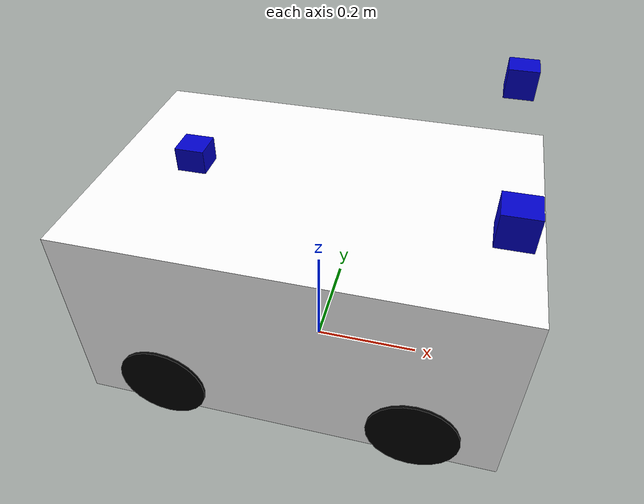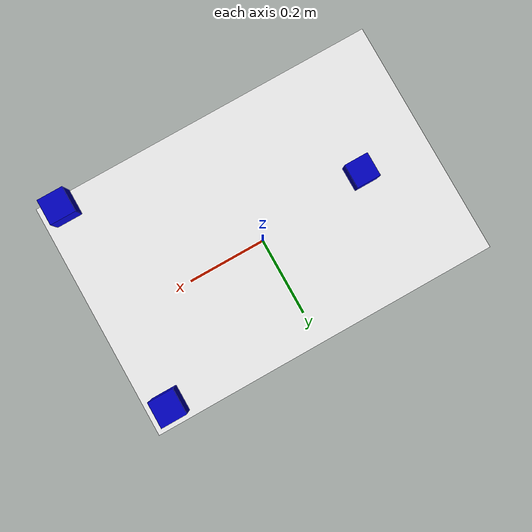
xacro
<?xml version="1.0"?>
<robot name="robot" xmlns:xacro="http://ros.org/wiki/xacro">

  <!-- Defining the colors used in this robot -->
  <material name="Black">
    <color rgba="0.0 0.0 0.0 1.0"/>
  </material>

  <material name="Red">
    <color rgba="0.8 0.0 0.0 1.0"/>
  </material>

  <material name="White">
    <color rgba="1.0 1.0 1.0 1.0"/>
  </material>

  <material name="Blue">
    <color rgba="0.0 0.0 0.8 1.0"/>
  </material>

  <!-- PROPERTY LIST -->
  <!--All units in m-kg-s-radians unit system -->
  <xacro:property name="M_PI" value="3.1415926535897931" />
  <xacro:property name="M_PI_2" value="1.570796327" />
  <xacro:property name="DEG_TO_RAD" value="0.017453293" />

  <!-- box -->
  <xacro:property name="box_size" value="0.05" />

  <!-- AGV Base -->
  <xacro:property name="agv_base_height" value="0.35" />
  <xacro:property name="agv_base_lift" value="0.025" />
  <xacro:property name="agv_base_width" value="0.495" />
  <xacro:property name="agv_base_length" value="0.73" />
  <xacro:property name="agv_base_mass" value="40" />
  <xacro:property name="agv_wheel_height" value="0.07825" />

  <!-- Macro for calculating inertia of cube -->
  <xacro:macro name="cuboid_inertia" params="m w d h">
    <inertia  ixx="${m*(h*h+d*d)/12}" ixy = "0" ixz = "0"
              iyy="${m*(w*w+d*d)/12}" iyz = "0"
              izz="${m*(w*w+h*h)/12}" />
  </xacro:macro>

  <!-- BASE-FOOTPRINT -->
  <!-- base_footprint is a fictitious link(frame) that is on the ground right below base_link origin -->
  <link name="base_footprint">
    <visual>
        <origin xyz="0 0 0" rpy="0 0 0" />
        <geometry>
            <box size="0.001 0.001 0.001" />
        </geometry>
    </visual>
  </link>

  <gazebo reference="base_footprint">
    <turnGravityOff>false</turnGravityOff>
  </gazebo>

  <!-- Wheel Macro -->
  <xacro:include filename="$(find config_robot)/urdf/omni_wheel.urdf.xacro" />

  <!-- WHEELS -->
  <xacro:omni_wheel_250 name="wheel_front_left" parent="agv_base_link">
    <origin xyz="0.22 0.21 ${-agv_base_height/2-agv_base_lift + agv_wheel_height}" rpy="0 0 0" />
  </xacro:omni_wheel_250>
  <xacro:omni_wheel_250 name="wheel_front_right" parent="agv_base_link">
    <origin xyz="0.22 -0.21 ${-agv_base_height/2-agv_base_lift + agv_wheel_height}" rpy="0 0 0" />
  </xacro:omni_wheel_250>
  <xacro:omni_wheel_250 name="wheel_back_left" parent="agv_base_link">
    <origin xyz="-0.22 0.21 ${-agv_base_height/2-agv_base_lift + agv_wheel_height}" rpy="0 0 0" />
  </xacro:omni_wheel_250>
  <xacro:omni_wheel_250 name="wheel_back_right" parent="agv_base_link">
    <origin xyz="-0.22 -0.21 ${-agv_base_height/2-agv_base_lift + agv_wheel_height}" rpy="0 0 0" />
  </xacro:omni_wheel_250>

  <!-- AGV_BASE_LINK -->
  <joint name="base_footprint_agv_base_joint" type="fixed">
    <origin xyz="0 0 ${agv_base_height/2+agv_base_lift}" rpy="0 0 0" />
    <parent link="base_footprint"/>
    <child link="agv_base_link" />
  </joint>
  <link name="agv_base_link">
   <inertial>
     <mass value="${agv_base_mass}" />
     <origin xyz="0 0 ${-agv_base_height/2-agv_base_lift}" />
     <cuboid_inertia m="${agv_base_mass}" d="${agv_base_length}" w="${agv_base_width}" h="${agv_base_height}" />
   </inertial>
   <visual>
      <origin xyz="0 0 0" rpy="0 0 0" />
      <geometry>
        <box size="${agv_base_length} ${agv_base_width} ${agv_base_height}" />
      </geometry>
      <material name="White" />
    </visual>
    <collision>
      <origin xyz="0 0 0" rpy="0 0 0" />
      <geometry>
        <box size="${agv_base_length} ${agv_base_width} ${agv_base_height}" />
      </geometry>
    </collision>
  </link>

  <!-- AGV lidar -->
  <joint name="base_footprint_lidar_joint" type="fixed">
    <origin xyz="-0.217 0.0 0.39175" rpy="0 0 0" />
    <parent link="base_footprint"/>
    <child link="agv_lidar" />
  </joint>
  <link name="agv_lidar">
    <visual>
      <origin xyz="0 0 0" rpy="0 0 0" />
      <geometry>
        <box size="${box_size} ${box_size} ${box_size}"/>
      </geometry>
      <material name="Blue" />
    </visual>
  </link>

  <gazebo reference="agv_lidar">
    <material>Gazebo/Blue</material>
    <turnGravityOff>false</turnGravityOff>
    <sensor type="ray" name="agv_lidar">
      <pose>${box_size/2} 0 0 0 0 0</pose>
      <visualize>false</visualize>
      <update_rate>40</update_rate>
      <ray>
        <scan>
          <horizontal>
            <samples>720</samples>
            <resolution>1</resolution>
            <min_angle>${-M_PI_2*2}</min_angle>
            <max_angle>${M_PI_2*2}</max_angle>
          </horizontal>
        </scan>
        <range>
          <min>0.10</min>
          <max>10.0</max>
          <resolution>0.001</resolution>
        </range>
      </ray>
      <plugin name="gazebo_ros_agv_lidar_controller" filename="libgazebo_ros_laser.so">
        <topicName>/scan</topicName>
        <frameName>agv_lidar</frameName>
      </plugin>
    </sensor>
  </gazebo>

  <!-- Left Camera -->
  <joint name="base_footprint_lcamera_joint" type="fixed">
    <origin xyz="0.3 0.2 0.5" rpy="0 0 0" />
    <parent link="base_footprint"/>
    <child link="agv_lcamera" />
  </joint>
  <link name="agv_lcamera">
    <visual>
      <origin xyz="0 0 0" rpy="0 0 0" />
      <geometry>
        <box size="${box_size} ${box_size} ${box_size}"/>
      </geometry>
      <material name="Blue" />
    </visual>
  </link>

  <gazebo reference="agv_lcamera">
    <material>Gazebo/Blue</material>
    <turnGravityOff>false</turnGravityOff>
    <sensor type="camera" name="agv_lcamera">
      <camera name="head">
        <horizontal_fov>1.3962634</horizontal_fov>
        <image>
          <width>800</width>
          <height>800</height>
          <format>R8G8B8</format>
        </image>
        <clip>
          <near>0.02</near>
          <far>300</far>
        </clip>
      </camera>
      <always_on>1</always_on>
      <update_rate>30</update_rate>
      <visualize>1</visualize>
      <plugin name="camera_controller" filename="libgazebo_ros_camera.so">
        <alwaysOn>true</alwaysOn>
        <updateRate>0.0</updateRate>
        <cameraName>lcamera</cameraName>
        <imageTopicName>image_raw</imageTopicName>
        <cameraInfoTopicName>camera_info</cameraInfoTopicName>
        <frameName>agv_lcamera</frameName>
        <hackBaseline>0.07</hackBaseline>
        <distortionK1>0.0</distortionK1>
        <distortionK2>0.0</distortionK2>
        <distortionK3>0.0</distortionK3>
        <distortionT1>0.0</distortionT1>
        <distortionT2>0.0</distortionT2>
      </plugin>
    </sensor>
  </gazebo>

  <!-- Right Camera -->
  <joint name="base_footprint_rcamera_joint" type="fixed">
    <origin xyz="0.3 -0.2 0.5" rpy="0 0 0" />
    <parent link="base_footprint"/>
    <child link="agv_rcamera" />
  </joint>
  <link name="agv_rcamera">
    <visual>
      <origin xyz="0 0 0" rpy="0 0 0" />
      <geometry>
        <box size="${box_size} ${box_size} ${box_size}"/>
      </geometry>
      <material name="Blue" />
    </visual>
  </link>

  <gazebo reference="agv_rcamera">
    <material>Gazebo/Blue</material>
    <turnGravityOff>false</turnGravityOff>
    <sensor type="camera" name="agv_rcamera">
      <camera name="head">
        <horizontal_fov>1.3962634</horizontal_fov>
        <image>
          <width>800</width>
          <height>800</height>
          <format>R8G8B8</format>
        </image>
        <clip>
          <near>0.02</near>
          <far>300</far>
        </clip>
      </camera>
      <always_on>1</always_on>
      <update_rate>30</update_rate>
      <visualize>1</visualize>
      <plugin name="camera_controller" filename="libgazebo_ros_camera.so">
        <alwaysOn>true</alwaysOn>
        <updateRate>0.0</updateRate>
        <cameraName>rcamera</cameraName>
        <imageTopicName>image_raw</imageTopicName>
        <cameraInfoTopicName>camera_info</cameraInfoTopicName>
        <frameName>agv_rcamera</frameName>
        <hackBaseline>0.07</hackBaseline>
        <distortionK1>0.0</distortionK1>
        <distortionK2>0.0</distortionK2>
        <distortionK3>0.0</distortionK3>
        <distortionT1>0.0</distortionT1>
        <distortionT2>0.0</distortionT2>
      </plugin>
    </sensor>
  </gazebo>

  <gazebo>
    <plugin name="planar_move_controller" filename="libgazebo_ros_planar_move.so">
      <commandTopic>cmd_vel</commandTopic>
      <odometryFrame>odom</odometryFrame>
      <odometryTopic>odom</odometryTopic>
      <robotBaseFrame>base_footprint</robotBaseFrame>
      <odometryRate>12.0</odometryRate>
    </plugin>
  </gazebo>

   <gazebo reference="agv_base_link">
    <gravity>true</gravity>
    <sensor name="imu_sensor" type="imu">
      <always_on>true</always_on>
      <update_rate>100</update_rate>
      <visualize>true</visualize>
      <topic>__default_topic__</topic>
      <plugin filename="libgazebo_ros_imu_sensor.so" name="imu_plugin">
        <topicName>imu</topicName>
        <bodyName>imu_link</bodyName>
        <updateRateHZ>10.0</updateRateHZ>
        <gaussianNoise>0.0</gaussianNoise>
        <xyzOffset>0 0 0</xyzOffset>
        <rpyOffset>0 0 0</rpyOffset>
        <frameName>imu_link</frameName>
        <initialOrientationAsReference>false</initialOrientationAsReference>
      </plugin>
      <pose>0 0 0 0 0 0</pose>
    </sensor>
  </gazebo>

</robot>

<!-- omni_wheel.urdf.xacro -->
<robot xmlns:xacro="http://ros.org/wiki/xacro" name="mpo_500">

  <!-- Macro for calculating inertia of cylinder -->
  <xacro:macro name="cylinder_inertia" params="m r h">
    <inertia  ixx="${m*(3*r*r+h*h)/12}" ixy = "0" ixz = "0"
              iyy="${m*(3*r*r+h*h)/12}" iyz = "0"
              izz="${m*r*r/2}" />
  </xacro:macro>

  <xacro:macro name="omni_wheel_250" params="name parent *origin">
   <joint name="${name}_joint" type="continuous">
    <xacro:insert_block name="origin" />
    <axis xyz="0 1 0" />
    <joint_properties damping="0.0" friction="0.0" />
    <parent link="${parent}" />
    <child link="${name}_link" />
   </joint>

   <link name="${name}_link" type="wheel">
    <inertial>
      <mass value="2.1" />
      <origin xyz="0 0 0" rpy="0 0 0" />
      <cylinder_inertia m="2.1" r="0.07825" h="0.085"/>
    </inertial>

    <visual>
     <origin xyz="0 0 0" rpy="1.570796326 0 0" />
     <geometry>
        <cylinder radius="0.07825" length="0.085"/>
     </geometry>
     <material name="Black" />
    </visual>

    <collision>
     <origin xyz="0 0 0" rpy="1.570796326 0 0" />
     <geometry>
        <cylinder radius="0.07825" length="0.085"/>
     </geometry>
    </collision>
   </link>

    <gazebo reference="${name}_link">
        <gravity>true</gravity>
        <self_collide>false</self_collide>
        <material value="Black"/>
    </gazebo>

  </xacro:macro>

</robot>
